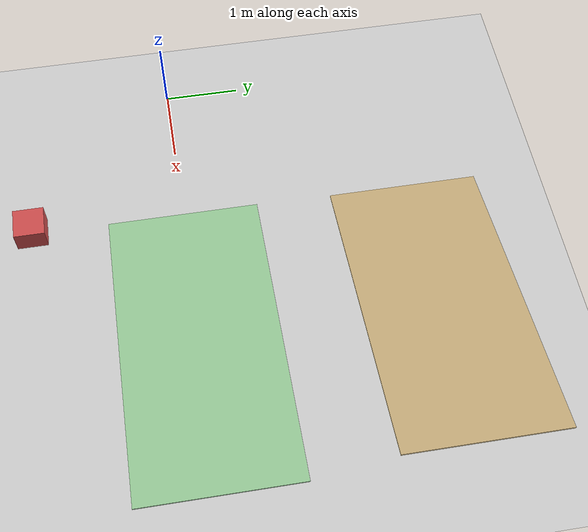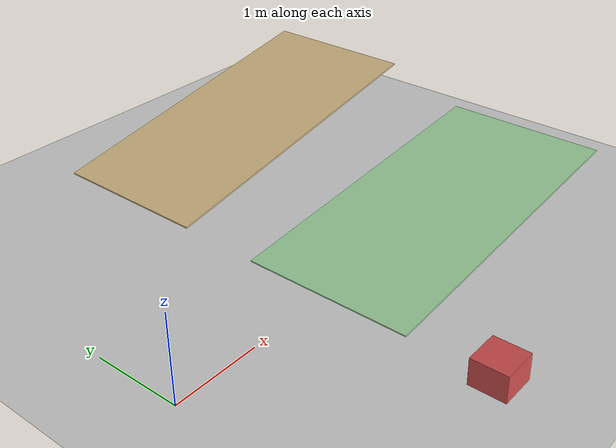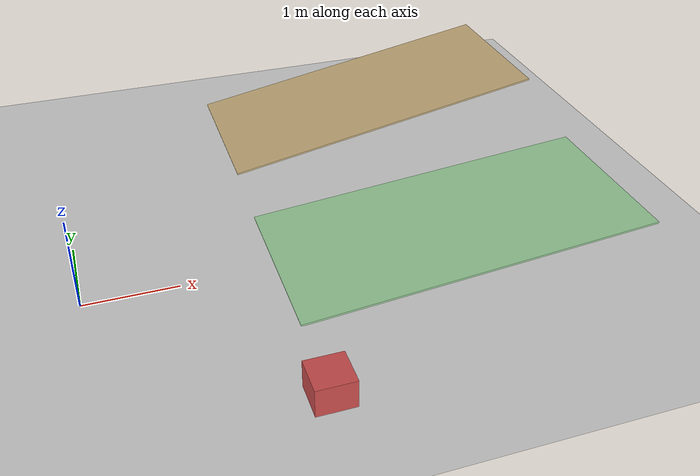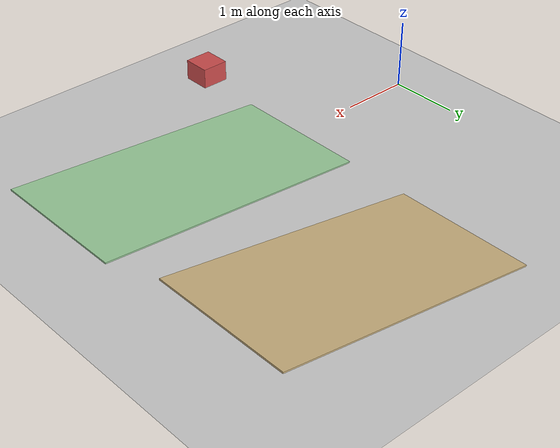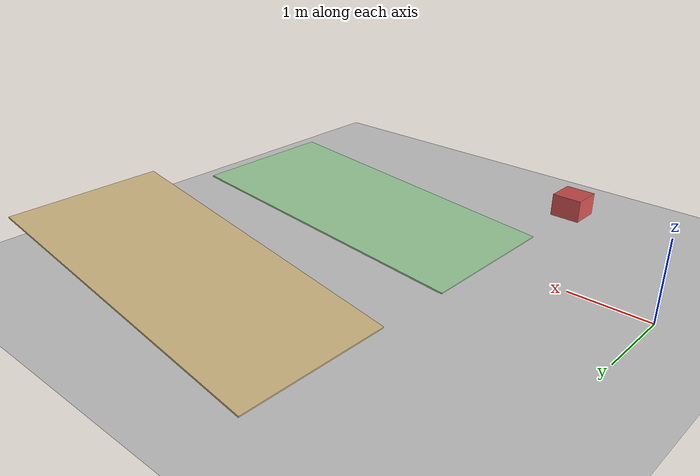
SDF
<?xml version="1.0" ?>
<!--
  GO2 Gait Controller — Test World
  Flat ground plane for gait testing.
  Includes terrain ramps for walk/trot validation.
-->
<sdf version="1.6">
  <world name="gait_test_world">

    <include><uri>model://sun</uri></include>
    <include><uri>model://ground_plane</uri></include>

    <!-- Physics tuned for legged robot contact -->
    <physics name="default_physics" default="0" type="ode">
      <max_step_size>0.001</max_step_size>
      <real_time_factor>1</real_time_factor>
      <real_time_update_rate>1000</real_time_update_rate>
      <ode>
        <solver>
          <type>quick</type>
          <iters>150</iters>
          <precon_iters>0</precon_iters>
          <sor>1.400000</sor>
          <use_dynamic_moi_rescaling>1</use_dynamic_moi_rescaling>
        </solver>
        <constraints>
          <cfm>0.00001</cfm>
          <erp>0.2</erp>
          <contact_max_correcting_vel>2000.000000</contact_max_correcting_vel>
          <contact_surface_layer>0.01000</contact_surface_layer>
        </constraints>
      </ode>
    </physics>

    <!-- Low ramp for walk gait testing (5 degree incline) -->
    <model name="ramp_walk">
      <static>true</static>
      <pose>4.0 0 0.17 0 -0.087 0</pose>
      <link name="link">
        <collision name="col">
          <geometry><box><size>4.0 2.0 0.02</size></box></geometry>
        </collision>
        <visual name="vis">
          <geometry><box><size>4.0 2.0 0.02</size></box></geometry>
          <material><ambient>0.6 0.8 0.6 1</ambient></material>
        </visual>
      </link>
    </model>

    <!-- Steeper ramp for trot gait testing (10 degree incline) -->
    <model name="ramp_trot">
      <static>true</static>
      <pose>4.0 3.0 0.35 0 -0.175 0</pose>
      <link name="link">
        <collision name="col">
          <geometry><box><size>4.0 2.0 0.02</size></box></geometry>
        </collision>
        <visual name="vis">
          <geometry><box><size>4.0 2.0 0.02</size></box></geometry>
          <material><ambient>0.8 0.7 0.5 1</ambient></material>
        </visual>
      </link>
    </model>

    <!-- Obstacle for walk gait avoidance testing -->
    <model name="obstacle_box">
      <static>true</static>
      <pose>2.0 -2.0 0.15 0 0 0</pose>
      <link name="link">
        <collision name="col">
          <geometry><box><size>0.4 0.4 0.3</size></box></geometry>
        </collision>
        <visual name="vis">
          <geometry><box><size>0.4 0.4 0.3</size></box></geometry>
          <material><ambient>0.8 0.3 0.3 1</ambient></material>
        </visual>
      </link>
    </model>

  </world>
</sdf>
